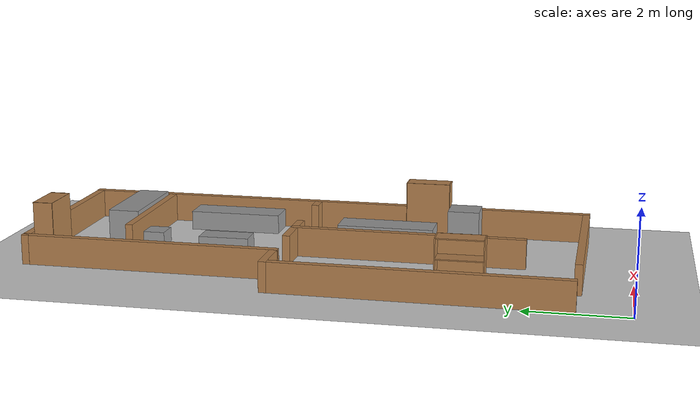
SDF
<sdf version="1.7">
 <world name="default">
  <light name="sun" type="directional">
   <pose>0 0 10 0 -0 0</pose>
   <diffuse>0.8 0.8 0.8 1</diffuse>
   <specular>0.2 0.2 0.2 1</specular>
   <attenuation>
    <range>1000</range>
    <constant>0.9</constant>
    <linear>0.01</linear>
    <quadratic>0.001</quadratic>
   </attenuation>
   <direction>-0.5 0.1 -0.9</direction>
   <spot><inner_angle>0</inner_angle><outer_angle>0</outer_angle><falloff>0</falloff></spot>
  </light>
  <model name="ground_plane">
   <static>1</static>
   <link name="link">
    <collision name="collision">
     <geometry><plane><normal>0 0 1</normal><size>100 100</size></plane></geometry>
     <surface>
      <contact><collide_bitmask>65535</collide_bitmask></contact>
      <friction><ode><mu>100</mu><mu2>50</mu2></ode></friction>
     </surface>
    </collision>
    <visual name="visual">
     <cast_shadows>0</cast_shadows>
     <geometry><plane><normal>0 0 1</normal><size>100 100</size></plane></geometry>
     <material>
      <script><uri>file://media/materials/scripts/gazebo.material</uri><name>Gazebo/Grey</name></script>
     </material>
    </visual>
   </link>
  </model>
  <gravity>0 0 -9.8</gravity>
  <magnetic_field>6e-06 2.3e-05 -4.2e-05</magnetic_field>
  <atmosphere type="adiabatic"/>
  <physics type="ode">
   <max_step_size>0.001</max_step_size>
   <real_time_factor>1</real_time_factor>
   <real_time_update_rate>1000</real_time_update_rate>
  </physics>
  <scene><ambient>0.4 0.4 0.4 1</ambient><background>0.7 0.7 0.7 1</background><shadows>1</shadows></scene>
  <spherical_coordinates>
   <surface_model>EARTH_WGS84</surface_model>
   <latitude_deg>0</latitude_deg>
   <longitude_deg>0</longitude_deg>
   <elevation>0</elevation>
   <heading_deg>0</heading_deg>
  </spherical_coordinates>
  <model name="bookshelf">
   <static>1</static>
   <link name="link">
    <inertial><mass>1</mass></inertial>
    <collision name="back">
     <pose>0 0.005 0.6 0 -0 0</pose>
     <geometry><box><size>0.9 0.01 1.2</size></box></geometry>
    </collision>
    <visual name="visual1">
     <pose>0 0.005 0.6 0 -0 0</pose>
     <geometry><box><size>0.9 0.01 1.2</size></box></geometry>
     <material>
      <script><uri>file://media/materials/scripts/gazebo.material</uri><name>Gazebo/Wood</name></script>
     </material>
    </visual>
    <collision name="left_side">
     <pose>0.45 -0.195 0.6 0 -0 0</pose>
     <geometry><box><size>0.02 0.4 1.2</size></box></geometry>
    </collision>
    <visual name="visual2">
     <pose>0.45 -0.195 0.6 0 -0 0</pose>
     <geometry><box><size>0.02 0.4 1.2</size></box></geometry>
     <material>
      <script><uri>file://media/materials/scripts/gazebo.material</uri><name>Gazebo/Wood</name></script>
     </material>
    </visual>
    <collision name="right_side">
     <pose>-0.45 -0.195 0.6 0 -0 0</pose>
     <geometry><box><size>0.02 0.4 1.2</size></box></geometry>
    </collision>
    <visual name="visual3">
     <pose>-0.45 -0.195 0.6 0 -0 0</pose>
     <geometry><box><size>0.02 0.4 1.2</size></box></geometry>
     <material>
      <script><uri>file://media/materials/scripts/gazebo.material</uri><name>Gazebo/Wood</name></script>
     </material>
    </visual>
    <collision name="bottom">
     <pose>0 -0.195 0.03 0 -0 0</pose>
     <geometry><box><size>0.88 0.4 0.06</size></box></geometry>
    </collision>
    <visual name="visual4">
     <pose>0 -0.195 0.03 0 -0 0</pose>
     <geometry><box><size>0.88 0.4 0.06</size></box></geometry>
     <material>
      <script><uri>file://media/materials/scripts/gazebo.material</uri><name>Gazebo/Wood</name></script>
     </material>
    </visual>
    <collision name="top">
     <pose>0 -0.195 1.19 0 -0 0</pose>
     <geometry><box><size>0.88 0.4 0.02</size></box></geometry>
    </collision>
    <visual name="visual5">
     <pose>0 -0.195 1.19 0 -0 0</pose>
     <geometry><box><size>0.88 0.4 0.02</size></box></geometry>
     <material>
      <script><uri>file://media/materials/scripts/gazebo.material</uri><name>Gazebo/Wood</name></script>
     </material>
    </visual>
    <collision name="low_shelf">
     <pose>0 -0.195 0.43 0 -0 0</pose>
     <geometry><box><size>0.88 0.4 0.02</size></box></geometry>
    </collision>
    <visual name="visual6">
     <pose>0 -0.195 0.43 0 -0 0</pose>
     <geometry><box><size>0.88 0.4 0.02</size></box></geometry>
     <material>
      <script><uri>file://media/materials/scripts/gazebo.material</uri><name>Gazebo/Wood</name></script>
     </material>
    </visual>
    <collision name="high_shelf">
     <pose>0 -0.195 0.8 0 -0 0</pose>
     <geometry><box><size>0.88 0.4 0.02</size></box></geometry>
    </collision>
    <visual name="visual7">
     <pose>0 -0.195 0.8 0 -0 0</pose>
     <geometry><box><size>0.88 0.4 0.02</size></box></geometry>
     <material>
      <script><uri>file://media/materials/scripts/gazebo.material</uri><name>Gazebo/Wood</name></script>
     </material>
    </visual>
   </link>
   <pose>4.64022 4.30226 0 0 -0 1.56717</pose>
  </model>
  <model name="bookshelf_0">
   <static>1</static>
   <link name="link">
    <inertial><mass>1</mass></inertial>
    <collision name="back">
     <pose>0 0.005 0.6 0 -0 0</pose>
     <geometry><box><size>0.9 0.01 1.2</size></box></geometry>
    </collision>
    <visual name="visual1">
     <pose>0 0.005 0.6 0 -0 0</pose>
     <geometry><box><size>0.9 0.01 1.2</size></box></geometry>
     <material>
      <script><uri>file://media/materials/scripts/gazebo.material</uri><name>Gazebo/Wood</name></script>
     </material>
    </visual>
    <collision name="left_side">
     <pose>0.45 -0.195 0.6 0 -0 0</pose>
     <geometry><box><size>0.02 0.4 1.2</size></box></geometry>
    </collision>
    <visual name="visual2">
     <pose>0.45 -0.195 0.6 0 -0 0</pose>
     <geometry><box><size>0.02 0.4 1.2</size></box></geometry>
     <material>
      <script><uri>file://media/materials/scripts/gazebo.material</uri><name>Gazebo/Wood</name></script>
     </material>
    </visual>
    <collision name="right_side">
     <pose>-0.45 -0.195 0.6 0 -0 0</pose>
     <geometry><box><size>0.02 0.4 1.2</size></box></geometry>
    </collision>
    <visual name="visual3">
     <pose>-0.45 -0.195 0.6 0 -0 0</pose>
     <geometry><box><size>0.02 0.4 1.2</size></box></geometry>
     <material>
      <script><uri>file://media/materials/scripts/gazebo.material</uri><name>Gazebo/Wood</name></script>
     </material>
    </visual>
    <collision name="bottom">
     <pose>0 -0.195 0.03 0 -0 0</pose>
     <geometry><box><size>0.88 0.4 0.06</size></box></geometry>
    </collision>
    <visual name="visual4">
     <pose>0 -0.195 0.03 0 -0 0</pose>
     <geometry><box><size>0.88 0.4 0.06</size></box></geometry>
     <material>
      <script><uri>file://media/materials/scripts/gazebo.material</uri><name>Gazebo/Wood</name></script>
     </material>
    </visual>
    <collision name="top">
     <pose>0 -0.195 1.19 0 -0 0</pose>
     <geometry><box><size>0.88 0.4 0.02</size></box></geometry>
    </collision>
    <visual name="visual5">
     <pose>0 -0.195 1.19 0 -0 0</pose>
     <geometry><box><size>0.88 0.4 0.02</size></box></geometry>
     <material>
      <script><uri>file://media/materials/scripts/gazebo.material</uri><name>Gazebo/Wood</name></script>
     </material>
    </visual>
    <collision name="low_shelf">
     <pose>0 -0.195 0.43 0 -0 0</pose>
     <geometry><box><size>0.88 0.4 0.02</size></box></geometry>
    </collision>
    <visual name="visual6">
     <pose>0 -0.195 0.43 0 -0 0</pose>
     <geometry><box><size>0.88 0.4 0.02</size></box></geometry>
     <material>
      <script><uri>file://media/materials/scripts/gazebo.material</uri><name>Gazebo/Wood</name></script>
     </material>
    </visual>
    <collision name="high_shelf">
     <pose>0 -0.195 0.8 0 -0 0</pose>
     <geometry><box><size>0.88 0.4 0.02</size></box></geometry>
    </collision>
    <visual name="visual7">
     <pose>0 -0.195 0.8 0 -0 0</pose>
     <geometry><box><size>0.88 0.4 0.02</size></box></geometry>
     <material>
      <script><uri>file://media/materials/scripts/gazebo.material</uri><name>Gazebo/Wood</name></script>
     </material>
    </visual>
   </link>
   <pose>1.76298 11.3937 0 -1.3e-05 0.001754 3.14</pose>
  </model>
  <model name="unit_box_1">
   <link name="link">
    <inertial>
     <mass>1</mass>
     <inertia>
      <ixx>0.166667</ixx>
      <ixy>0</ixy>
      <ixz>0</ixz>
      <iyy>0.166667</iyy>
      <iyz>0</iyz>
      <izz>0.166667</izz>
     </inertia>
    </inertial>
    <visual name="visual">
     <geometry><box><size>1.94128 0.654649 0.397354</size></box></geometry>
     <material>
      <script><name>Gazebo/Grey</name><uri>file://media/materials/scripts/gazebo.material</uri></script>
      <shader type="pixel"><normal_map>__default__</normal_map></shader>
      <ambient>0.729 0.741 0.714 1</ambient>
      <diffuse>0.7 0.7 0.7 1</diffuse>
      <specular>0.01 0.01 0.01 1</specular>
      <emissive>0 0 0 1</emissive>
     </material>
    </visual>
    <collision name="collision">
     <geometry><box><size>1.94128 0.654649 0.397354</size></box></geometry>
     <surface>
      <friction>
       <ode><mu>1</mu><mu2>1</mu2><fdir1>0 0 0</fdir1><slip1>0</slip1><slip2>0</slip2></ode>
       <torsional>
        <coefficient>1</coefficient>
        <patch_radius>0</patch_radius>
        <surface_radius>0</surface_radius>
        <use_patch_radius>1</use_patch_radius>
        <ode><slip>0</slip></ode>
       </torsional>
      </friction>
      <bounce><restitution_coefficient>0</restitution_coefficient><threshold>1e+06</threshold></bounce>
      <contact>
       <collide_without_contact>0</collide_without_contact>
       <collide_without_contact_bitmask>1</collide_without_contact_bitmask>
       <collide_bitmask>1</collide_bitmask>
       <ode>
        <soft_cfm>0</soft_cfm>
        <soft_erp>0.2</soft_erp>
        <kp>1e+13</kp>
        <kd>1</kd>
        <max_vel>0.01</max_vel>
        <min_depth>0</min_depth>
       </ode>
       <bullet>
        <split_impulse>1</split_impulse>
        <split_impulse_penetration_threshold>-0.01</split_impulse_penetration_threshold>
        <soft_cfm>0</soft_cfm>
        <soft_erp>0.2</soft_erp>
        <kp>1e+13</kp>
        <kd>1</kd>
       </bullet>
      </contact>
     </surface>
    </collision>
   </link>
   <static>0</static>
   <pose>4.71312 8.4879 0.198677 -0 -0 -1.57132</pose>
  </model>
  <model name="unit_box_1_clone">
   <link name="link">
    <inertial>
     <mass>1</mass>
     <inertia>
      <ixx>0.166667</ixx>
      <ixy>0</ixy>
      <ixz>0</ixz>
      <iyy>0.166667</iyy>
      <iyz>0</iyz>
      <izz>0.166667</izz>
     </inertia>
    </inertial>
    <visual name="visual">
     <geometry><box><size>1.94129 0.654649 0.397354</size></box></geometry>
     <material>
      <script><name>Gazebo/Grey</name><uri>file://media/materials/scripts/gazebo.material</uri></script>
      <shader type="pixel"><normal_map>__default__</normal_map></shader>
      <ambient>0.729 0.741 0.714 1</ambient>
      <diffuse>0.7 0.7 0.7 1</diffuse>
      <specular>0.01 0.01 0.01 1</specular>
      <emissive>0 0 0 1</emissive>
     </material>
    </visual>
    <collision name="collision">
     <geometry><box><size>1.94129 0.654649 0.397354</size></box></geometry>
     <surface>
      <friction>
       <ode><mu>1</mu><mu2>1</mu2><fdir1>0 0 0</fdir1><slip1>0</slip1><slip2>0</slip2></ode>
       <torsional>
        <coefficient>1</coefficient>
        <patch_radius>0</patch_radius>
        <surface_radius>0</surface_radius>
        <use_patch_radius>1</use_patch_radius>
        <ode><slip>0</slip></ode>
       </torsional>
      </friction>
      <bounce><restitution_coefficient>0</restitution_coefficient><threshold>1e+06</threshold></bounce>
      <contact>
       <collide_without_contact>0</collide_without_contact>
       <collide_without_contact_bitmask>1</collide_without_contact_bitmask>
       <collide_bitmask>1</collide_bitmask>
       <ode>
        <soft_cfm>0</soft_cfm>
        <soft_erp>0.2</soft_erp>
        <kp>1e+13</kp>
        <kd>1</kd>
        <max_vel>0.01</max_vel>
        <min_depth>0</min_depth>
       </ode>
       <bullet>
        <split_impulse>1</split_impulse>
        <split_impulse_penetration_threshold>-0.01</split_impulse_penetration_threshold>
        <soft_cfm>0</soft_cfm>
        <soft_erp>0.2</soft_erp>
        <kp>1e+13</kp>
        <kd>1</kd>
       </bullet>
      </contact>
     </surface>
    </collision>
   </link>
   <static>0</static>
   <pose>0.614576 5.7222 0.198675 7e-06 -0 -1.5701</pose>
  </model>
  <model name="unit_box_1_clone_0">
   <link name="link">
    <inertial>
     <mass>1</mass>
     <inertia>
      <ixx>0.166667</ixx>
      <ixy>0</ixy>
      <ixz>0</ixz>
      <iyy>0.166667</iyy>
      <iyz>0</iyz>
      <izz>0.166667</izz>
     </inertia>
    </inertial>
    <visual name="visual">
     <geometry><box><size>1.94129 0.654649 0.65354</size></box></geometry>
     <material>
      <script><name>Gazebo/Grey</name><uri>file://media/materials/scripts/gazebo.material</uri></script>
      <shader type="pixel"><normal_map>__default__</normal_map></shader>
      <ambient>0.729 0.741 0.714 1</ambient>
      <diffuse>0.7 0.7 0.7 1</diffuse>
      <specular>0.01 0.01 0.01 1</specular>
      <emissive>0 0 0 1</emissive>
     </material>
    </visual>
    <collision name="collision">
     <geometry><box><size>1.94129 0.654649 0.65354</size></box></geometry>
     <surface>
      <friction>
       <ode><mu>1</mu><mu2>1</mu2><fdir1>0 0 0</fdir1><slip1>0</slip1><slip2>0</slip2></ode>
       <torsional>
        <coefficient>1</coefficient>
        <patch_radius>0</patch_radius>
        <surface_radius>0</surface_radius>
        <use_patch_radius>1</use_patch_radius>
        <ode><slip>0</slip></ode>
       </torsional>
      </friction>
      <bounce><restitution_coefficient>0</restitution_coefficient><threshold>1e+06</threshold></bounce>
      <contact>
       <collide_without_contact>0</collide_without_contact>
       <collide_without_contact_bitmask>1</collide_without_contact_bitmask>
       <collide_bitmask>1</collide_bitmask>
       <ode>
        <soft_cfm>0</soft_cfm>
        <soft_erp>0.2</soft_erp>
        <kp>1e+13</kp>
        <kd>1</kd>
        <max_vel>0.01</max_vel>
        <min_depth>0</min_depth>
       </ode>
       <bullet>
        <split_impulse>1</split_impulse>
        <split_impulse_penetration_threshold>-0.01</split_impulse_penetration_threshold>
        <soft_cfm>0</soft_cfm>
        <soft_erp>0.2</soft_erp>
        <kp>1e+13</kp>
        <kd>1</kd>
       </bullet>
      </contact>
     </surface>
    </collision>
   </link>
   <static>0</static>
   <pose>3.18876 4.92918 0.32677 1e-06 -0 1.56418</pose>
  </model>
  <model name="unit_box_1_clone_1">
   <link name="link">
    <inertial>
     <mass>1</mass>
     <inertia>
      <ixx>0.166667</ixx>
      <ixy>0</ixy>
      <ixz>0</ixz>
      <iyy>0.166667</iyy>
      <iyz>0</iyz>
      <izz>0.166667</izz>
     </inertia>
    </inertial>
    <visual name="visual">
     <geometry><box><size>0.642342 0.654649 0.68811</size></box></geometry>
     <material>
      <script><name>Gazebo/Grey</name><uri>file://media/materials/scripts/gazebo.material</uri></script>
      <shader type="pixel"><normal_map>__default__</normal_map></shader>
      <ambient>0.729 0.741 0.714 1</ambient>
      <diffuse>0.7 0.7 0.7 1</diffuse>
      <specular>0.01 0.01 0.01 1</specular>
      <emissive>0 0 0 1</emissive>
     </material>
    </visual>
    <collision name="collision">
     <geometry><box><size>0.642342 0.654649 0.68811</size></box></geometry>
     <surface>
      <friction>
       <ode><mu>1</mu><mu2>1</mu2><fdir1>0 0 0</fdir1><slip1>0</slip1><slip2>0</slip2></ode>
       <torsional>
        <coefficient>1</coefficient>
        <patch_radius>0</patch_radius>
        <surface_radius>0</surface_radius>
        <use_patch_radius>1</use_patch_radius>
        <ode><slip>0</slip></ode>
       </torsional>
      </friction>
      <bounce><restitution_coefficient>0</restitution_coefficient><threshold>1e+06</threshold></bounce>
      <contact>
       <collide_without_contact>0</collide_without_contact>
       <collide_without_contact_bitmask>1</collide_without_contact_bitmask>
       <collide_bitmask>1</collide_bitmask>
       <ode>
        <soft_cfm>0</soft_cfm>
        <soft_erp>0.2</soft_erp>
        <kp>1e+13</kp>
        <kd>1</kd>
        <max_vel>0.01</max_vel>
        <min_depth>0</min_depth>
       </ode>
       <bullet>
        <split_impulse>1</split_impulse>
        <split_impulse_penetration_threshold>-0.01</split_impulse_penetration_threshold>
        <soft_cfm>0</soft_cfm>
        <soft_erp>0.2</soft_erp>
        <kp>1e+13</kp>
        <kd>1</kd>
       </bullet>
      </contact>
     </surface>
    </collision>
   </link>
   <static>0</static>
   <pose>4.69274 3.51474 0.344055 0 -0 -0.003646</pose>
  </model>
  <model name="bookshelf_clone">
   <static>1</static>
   <link name="link">
    <inertial><mass>1</mass></inertial>
    <collision name="back">
     <pose>0 0.005 0.6 0 -0 0</pose>
     <geometry><box><size>0.9 0.01 1.2</size></box></geometry>
    </collision>
    <visual name="visual1">
     <pose>0 0.005 0.6 0 -0 0</pose>
     <geometry><box><size>0.9 0.01 1.2</size></box></geometry>
     <material>
      <script><uri>file://media/materials/scripts/gazebo.material</uri><name>Gazebo/Wood</name></script>
     </material>
    </visual>
    <collision name="left_side">
     <pose>0.45 -0.195 0.6 0 -0 0</pose>
     <geometry><box><size>0.02 0.4 1.2</size></box></geometry>
    </collision>
    <visual name="visual2">
     <pose>0.45 -0.195 0.6 0 -0 0</pose>
     <geometry><box><size>0.02 0.4 1.2</size></box></geometry>
     <material>
      <script><uri>file://media/materials/scripts/gazebo.material</uri><name>Gazebo/Wood</name></script>
     </material>
    </visual>
    <collision name="right_side">
     <pose>-0.45 -0.195 0.6 0 -0 0</pose>
     <geometry><box><size>0.02 0.4 1.2</size></box></geometry>
    </collision>
    <visual name="visual3">
     <pose>-0.45 -0.195 0.6 0 -0 0</pose>
     <geometry><box><size>0.02 0.4 1.2</size></box></geometry>
     <material>
      <script><uri>file://media/materials/scripts/gazebo.material</uri><name>Gazebo/Wood</name></script>
     </material>
    </visual>
    <collision name="bottom">
     <pose>0 -0.195 0.03 0 -0 0</pose>
     <geometry><box><size>0.88 0.4 0.06</size></box></geometry>
    </collision>
    <visual name="visual4">
     <pose>0 -0.195 0.03 0 -0 0</pose>
     <geometry><box><size>0.88 0.4 0.06</size></box></geometry>
     <material>
      <script><uri>file://media/materials/scripts/gazebo.material</uri><name>Gazebo/Wood</name></script>
     </material>
    </visual>
    <collision name="top">
     <pose>0 -0.195 1.19 0 -0 0</pose>
     <geometry><box><size>0.88 0.4 0.02</size></box></geometry>
    </collision>
    <visual name="visual5">
     <pose>0 -0.195 1.19 0 -0 0</pose>
     <geometry><box><size>0.88 0.4 0.02</size></box></geometry>
     <material>
      <script><uri>file://media/materials/scripts/gazebo.material</uri><name>Gazebo/Wood</name></script>
     </material>
    </visual>
    <collision name="low_shelf">
     <pose>0 -0.195 0.43 0 -0 0</pose>
     <geometry><box><size>0.88 0.4 0.02</size></box></geometry>
    </collision>
    <visual name="visual6">
     <pose>0 -0.195 0.43 0 -0 0</pose>
     <geometry><box><size>0.88 0.4 0.02</size></box></geometry>
     <material>
      <script><uri>file://media/materials/scripts/gazebo.material</uri><name>Gazebo/Wood</name></script>
     </material>
    </visual>
    <collision name="high_shelf">
     <pose>0 -0.195 0.8 0 -0 0</pose>
     <geometry><box><size>0.88 0.4 0.02</size></box></geometry>
    </collision>
    <visual name="visual7">
     <pose>0 -0.195 0.8 0 -0 0</pose>
     <geometry><box><size>0.88 0.4 0.02</size></box></geometry>
     <material>
      <script><uri>file://media/materials/scripts/gazebo.material</uri><name>Gazebo/Wood</name></script>
     </material>
    </visual>
   </link>
   <pose>0.634034 3.1354 0 0 0 -1.56184</pose>
  </model>
  <model name="unit_box_1_clone_2">
   <link name="link">
    <inertial>
     <mass>1</mass>
     <inertia>
      <ixx>0.166667</ixx>
      <ixy>0</ixy>
      <ixz>0</ixz>
      <iyy>0.166667</iyy>
      <iyz>0</iyz>
      <izz>0.166667</izz>
     </inertia>
    </inertial>
    <visual name="visual">
     <geometry><box><size>1.04025 0.52304 0.295985</size></box></geometry>
     <material>
      <script><name>Gazebo/Grey</name><uri>file://media/materials/scripts/gazebo.material</uri></script>
      <shader type="pixel"><normal_map>__default__</normal_map></shader>
      <ambient>0.729 0.741 0.714 1</ambient>
      <diffuse>0.7 0.7 0.7 1</diffuse>
      <specular>0.01 0.01 0.01 1</specular>
      <emissive>0 0 0 1</emissive>
     </material>
    </visual>
    <collision name="collision">
     <geometry><box><size>1.04025 0.52304 0.295985</size></box></geometry>
     <surface>
      <friction>
       <ode><mu>1</mu><mu2>1</mu2><fdir1>0 0 0</fdir1><slip1>0</slip1><slip2>0</slip2></ode>
       <torsional>
        <coefficient>1</coefficient>
        <patch_radius>0</patch_radius>
        <surface_radius>0</surface_radius>
        <use_patch_radius>1</use_patch_radius>
        <ode><slip>0</slip></ode>
       </torsional>
      </friction>
      <bounce><restitution_coefficient>0</restitution_coefficient><threshold>1e+06</threshold></bounce>
      <contact>
       <collide_without_contact>0</collide_without_contact>
       <collide_without_contact_bitmask>1</collide_without_contact_bitmask>
       <collide_bitmask>1</collide_bitmask>
       <ode>
        <soft_cfm>0</soft_cfm>
        <soft_erp>0.2</soft_erp>
        <kp>1e+13</kp>
        <kd>1</kd>
        <max_vel>0.01</max_vel>
        <min_depth>0</min_depth>
       </ode>
       <bullet>
        <split_impulse>1</split_impulse>
        <split_impulse_penetration_threshold>-0.01</split_impulse_penetration_threshold>
        <soft_cfm>0</soft_cfm>
        <soft_erp>0.2</soft_erp>
        <kp>1e+13</kp>
        <kd>1</kd>
       </bullet>
      </contact>
     </surface>
    </collision>
   </link>
   <static>0</static>
   <pose>2.99365 8.2822 0.147993 -0 -0 -1.55916</pose>
  </model>
  <model name="unit_box_1_clone_2_clone">
   <link name="link">
    <inertial>
     <mass>1</mass>
     <inertia>
      <ixx>0.166667</ixx>
      <ixy>0</ixy>
      <ixz>0</ixz>
      <iyy>0.166667</iyy>
      <iyz>0</iyz>
      <izz>0.166667</izz>
     </inertia>
    </inertial>
    <visual name="visual">
     <geometry><box><size>0.479092 0.463481 0.295985</size></box></geometry>
     <material>
      <script><name>Gazebo/Grey</name><uri>file://media/materials/scripts/gazebo.material</uri></script>
      <shader type="pixel"><normal_map>__default__</normal_map></shader>
      <ambient>0.729 0.741 0.714 1</ambient>
      <diffuse>0.7 0.7 0.7 1</diffuse>
      <specular>0.01 0.01 0.01 1</specular>
      <emissive>0 0 0 1</emissive>
     </material>
    </visual>
    <collision name="collision">
     <geometry><box><size>0.479092 0.463481 0.295985</size></box></geometry>
     <surface>
      <friction>
       <ode><mu>1</mu><mu2>1</mu2><fdir1>0 0 0</fdir1><slip1>0</slip1><slip2>0</slip2></ode>
       <torsional>
        <coefficient>1</coefficient>
        <patch_radius>0</patch_radius>
        <surface_radius>0</surface_radius>
        <use_patch_radius>1</use_patch_radius>
        <ode><slip>0</slip></ode>
       </torsional>
      </friction>
      <bounce><restitution_coefficient>0</restitution_coefficient><threshold>1e+06</threshold></bounce>
      <contact>
       <collide_without_contact>0</collide_without_contact>
       <collide_without_contact_bitmask>1</collide_without_contact_bitmask>
       <collide_bitmask>1</collide_bitmask>
       <ode>
        <soft_cfm>0</soft_cfm>
        <soft_erp>0.2</soft_erp>
        <kp>1e+13</kp>
        <kd>1</kd>
        <max_vel>0.01</max_vel>
        <min_depth>0</min_depth>
       </ode>
       <bullet>
        <split_impulse>1</split_impulse>
        <split_impulse_penetration_threshold>-0.01</split_impulse_penetration_threshold>
        <soft_cfm>0</soft_cfm>
        <soft_erp>0.2</soft_erp>
        <kp>1e+13</kp>
        <kd>1</kd>
       </bullet>
      </contact>
     </surface>
    </collision>
   </link>
   <static>0</static>
   <pose>3.1061 9.83613 0.147992 -0 -0 -0.000143</pose>
  </model>
  <model name="unit_box_1_clone_0_clone">
   <link name="link">
    <inertial>
     <mass>1</mass>
     <inertia>
      <ixx>0.166667</ixx>
      <ixy>0</ixy>
      <ixz>0</ixz>
      <iyy>0.166667</iyy>
      <iyz>0</iyz>
      <izz>0.166667</izz>
     </inertia>
    </inertial>
    <visual name="visual">
     <geometry><box><size>1.94129 0.654649 0.65354</size></box></geometry>
     <material>
      <script><name>Gazebo/Grey</name><uri>file://media/materials/scripts/gazebo.material</uri></script>
      <shader type="pixel"><normal_map>__default__</normal_map></shader>
      <ambient>0.729 0.741 0.714 1</ambient>
      <diffuse>0.7 0.7 0.7 1</diffuse>
      <specular>0.01 0.01 0.01 1</specular>
      <emissive>0 0 0 1</emissive>
     </material>
    </visual>
    <collision name="collision">
     <geometry><box><size>1.94129 0.654649 0.65354</size></box></geometry>
     <surface>
      <friction>
       <ode><mu>1</mu><mu2>1</mu2><fdir1>0 0 0</fdir1><slip1>0</slip1><slip2>0</slip2></ode>
       <torsional>
        <coefficient>1</coefficient>
        <patch_radius>0</patch_radius>
        <surface_radius>0</surface_radius>
        <use_patch_radius>1</use_patch_radius>
        <ode><slip>0</slip></ode>
       </torsional>
      </friction>
      <bounce><restitution_coefficient>0</restitution_coefficient><threshold>1e+06</threshold></bounce>
      <contact>
       <collide_without_contact>0</collide_without_contact>
       <collide_without_contact_bitmask>1</collide_without_contact_bitmask>
       <collide_bitmask>1</collide_bitmask>
       <ode>
        <soft_cfm>0</soft_cfm>
        <soft_erp>0.2</soft_erp>
        <kp>1e+13</kp>
        <kd>1</kd>
        <max_vel>0.01</max_vel>
        <min_depth>0</min_depth>
       </ode>
       <bullet>
        <split_impulse>1</split_impulse>
        <split_impulse_penetration_threshold>-0.01</split_impulse_penetration_threshold>
        <soft_cfm>0</soft_cfm>
        <soft_erp>0.2</soft_erp>
        <kp>1e+13</kp>
        <kd>1</kd>
       </bullet>
      </contact>
     </surface>
    </collision>
   </link>
   <static>0</static>
   <pose>4.10809 10.568 0.326767 -1e-05 -0 -0.013198</pose>
  </model>
  <model name="LAR_test">
   <link name="Wall_76">
    <pose>-2.4315 2.473 0 0 -0 3.14159</pose>
    <visual name="Wall_76_Visual">
     <pose>0 0 0.3 0 -0 0</pose>
     <geometry><box><size>5.82713 0.15 0.6</size></box></geometry>
     <material>
      <script><uri>file://media/materials/scripts/gazebo.material</uri><name>Gazebo/Wood</name></script>
      <ambient>1 1 1 1</ambient>
      <shader type="pixel"/>
     </material>
     <meta><layer>0</layer></meta>
    </visual>
    <collision name="Wall_76_Collision">
     <pose>0 0 0.3 0 -0 0</pose>
     <geometry><box><size>5.82713 0.15 0.6</size></box></geometry>
     <surface>
      <friction>
       <ode><mu>1</mu><mu2>1</mu2><fdir1>0 0 0</fdir1><slip1>0</slip1><slip2>0</slip2></ode>
       <torsional>
        <coefficient>1</coefficient>
        <patch_radius>0</patch_radius>
        <surface_radius>0</surface_radius>
        <use_patch_radius>1</use_patch_radius>
        <ode><slip>0</slip></ode>
       </torsional>
      </friction>
      <bounce><restitution_coefficient>0</restitution_coefficient><threshold>1e+06</threshold></bounce>
      <contact>
       <collide_without_contact>0</collide_without_contact>
       <collide_without_contact_bitmask>1</collide_without_contact_bitmask>
       <collide_bitmask>1</collide_bitmask>
       <ode>
        <soft_cfm>0</soft_cfm>
        <soft_erp>0.2</soft_erp>
        <kp>1e+13</kp>
        <kd>1</kd>
        <max_vel>0.01</max_vel>
        <min_depth>0</min_depth>
       </ode>
       <bullet>
        <split_impulse>1</split_impulse>
        <split_impulse_penetration_threshold>-0.01</split_impulse_penetration_threshold>
        <soft_cfm>0</soft_cfm>
        <soft_erp>0.2</soft_erp>
        <kp>1e+13</kp>
        <kd>1</kd>
       </bullet>
      </contact>
     </surface>
    </collision>
   </link>
   <link name="Wall_78">
    <pose>0.407 2.048 0 0 0 -1.5708</pose>
    <visual name="Wall_78_Visual">
     <pose>0 0 0.3 0 -0 0</pose>
     <geometry><box><size>1 0.15 0.6</size></box></geometry>
     <material>
      <script><uri>file://media/materials/scripts/gazebo.material</uri><name>Gazebo/Wood</name></script>
      <ambient>1 1 1 1</ambient>
      <shader type="pixel"/>
     </material>
     <meta><layer>0</layer></meta>
    </visual>
    <collision name="Wall_78_Collision">
     <pose>0 0 0.3 0 -0 0</pose>
     <geometry><box><size>1 0.15 0.6</size></box></geometry>
     <surface>
      <friction>
       <ode><mu>1</mu><mu2>1</mu2><fdir1>0 0 0</fdir1><slip1>0</slip1><slip2>0</slip2></ode>
       <torsional>
        <coefficient>1</coefficient>
        <patch_radius>0</patch_radius>
        <surface_radius>0</surface_radius>
        <use_patch_radius>1</use_patch_radius>
        <ode><slip>0</slip></ode>
       </torsional>
      </friction>
      <bounce><restitution_coefficient>0</restitution_coefficient><threshold>1e+06</threshold></bounce>
      <contact>
       <collide_without_contact>0</collide_without_contact>
       <collide_without_contact_bitmask>1</collide_without_contact_bitmask>
       <collide_bitmask>1</collide_bitmask>
       <ode>
        <soft_cfm>0</soft_cfm>
        <soft_erp>0.2</soft_erp>
        <kp>1e+13</kp>
        <kd>1</kd>
        <max_vel>0.01</max_vel>
        <min_depth>0</min_depth>
       </ode>
       <bullet>
        <split_impulse>1</split_impulse>
        <split_impulse_penetration_threshold>-0.01</split_impulse_penetration_threshold>
        <soft_cfm>0</soft_cfm>
        <soft_erp>0.2</soft_erp>
        <kp>1e+13</kp>
        <kd>1</kd>
       </bullet>
      </contact>
     </surface>
    </collision>
   </link>
   <link name="Wall_80">
    <pose>2.957 1.6285 0 0 -0 0.002157</pose>
    <visual name="Wall_80_Visual">
     <pose>0 0 0.3 0 -0 0</pose>
     <geometry><box><size>5.25 0.15 0.6</size></box></geometry>
     <material>
      <script><uri>file://media/materials/scripts/gazebo.material</uri><name>Gazebo/Wood</name></script>
      <ambient>1 1 1 1</ambient>
      <shader type="pixel"/>
     </material>
     <meta><layer>0</layer></meta>
    </visual>
    <collision name="Wall_80_Collision">
     <pose>0 0 0.3 0 -0 0</pose>
     <geometry><box><size>5.25 0.15 0.6</size></box></geometry>
     <surface>
      <friction>
       <ode><mu>1</mu><mu2>1</mu2><fdir1>0 0 0</fdir1><slip1>0</slip1><slip2>0</slip2></ode>
       <torsional>
        <coefficient>1</coefficient>
        <patch_radius>0</patch_radius>
        <surface_radius>0</surface_radius>
        <use_patch_radius>1</use_patch_radius>
        <ode><slip>0</slip></ode>
       </torsional>
      </friction>
      <bounce><restitution_coefficient>0</restitution_coefficient><threshold>1e+06</threshold></bounce>
      <contact>
       <collide_without_contact>0</collide_without_contact>
       <collide_without_contact_bitmask>1</collide_without_contact_bitmask>
       <collide_bitmask>1</collide_bitmask>
       <ode>
        <soft_cfm>0</soft_cfm>
        <soft_erp>0.2</soft_erp>
        <kp>1e+13</kp>
        <kd>1</kd>
        <max_vel>0.01</max_vel>
        <min_depth>0</min_depth>
       </ode>
       <bullet>
        <split_impulse>1</split_impulse>
        <split_impulse_penetration_threshold>-0.01</split_impulse_penetration_threshold>
        <soft_cfm>0</soft_cfm>
        <soft_erp>0.2</soft_erp>
        <kp>1e+13</kp>
        <kd>1</kd>
       </bullet>
      </contact>
     </surface>
    </collision>
   </link>
   <link name="Wall_82">
    <pose>5.507 -0.4155 0 0 0 -1.5708</pose>
    <visual name="Wall_82_Visual">
     <pose>0 0 0.3 0 -0 0</pose>
     <geometry><box><size>4.24965 0.15 0.6</size></box></geometry>
     <material>
      <script><uri>file://media/materials/scripts/gazebo.material</uri><name>Gazebo/Wood</name></script>
      <ambient>1 1 1 1</ambient>
      <shader type="pixel"/>
     </material>
     <meta><layer>0</layer></meta>
    </visual>
    <collision name="Wall_82_Collision">
     <pose>0 0 0.3 0 -0 0</pose>
     <geometry><box><size>4.24965 0.15 0.6</size></box></geometry>
     <surface>
      <friction>
       <ode><mu>1</mu><mu2>1</mu2><fdir1>0 0 0</fdir1><slip1>0</slip1><slip2>0</slip2></ode>
       <torsional>
        <coefficient>1</coefficient>
        <patch_radius>0</patch_radius>
        <surface_radius>0</surface_radius>
        <use_patch_radius>1</use_patch_radius>
        <ode><slip>0</slip></ode>
       </torsional>
      </friction>
      <bounce><restitution_coefficient>0</restitution_coefficient><threshold>1e+06</threshold></bounce>
      <contact>
       <collide_without_contact>0</collide_without_contact>
       <collide_without_contact_bitmask>1</collide_without_contact_bitmask>
       <collide_bitmask>1</collide_bitmask>
       <ode>
        <soft_cfm>0</soft_cfm>
        <soft_erp>0.2</soft_erp>
        <kp>1e+13</kp>
        <kd>1</kd>
        <max_vel>0.01</max_vel>
        <min_depth>0</min_depth>
       </ode>
       <bullet>
        <split_impulse>1</split_impulse>
        <split_impulse_penetration_threshold>-0.01</split_impulse_penetration_threshold>
        <soft_cfm>0</soft_cfm>
        <soft_erp>0.2</soft_erp>
        <kp>1e+13</kp>
        <kd>1</kd>
       </bullet>
      </contact>
     </surface>
    </collision>
   </link>
   <link name="Wall_84">
    <pose>-5.335 -0.470055 0 0 0 -1.5708</pose>
    <inertial>
     <inertia><ixx>0</ixx><ixy>0</ixy><ixz>0</ixz><iyy>0</iyy><iyz>0</iyz><izz>0</izz></inertia>
     <mass>0</mass>
    </inertial>
    <visual name="Wall_84_Visual">
     <pose>0 0 0.3 0 -0 0</pose>
     <geometry><box><size>3.87294 0.15 0.6</size></box></geometry>
     <material>
      <script><uri>file://media/materials/scripts/gazebo.material</uri><name>Gazebo/Wood</name></script>
      <ambient>1 1 1 1</ambient>
      <shader type="pixel"/>
     </material>
     <meta><layer>0</layer></meta>
    </visual>
    <collision name="Wall_84_Collision">
     <pose>0 0 0.3 0 -0 0</pose>
     <geometry><box><size>3.87294 0.15 0.6</size></box></geometry>
     <surface>
      <friction>
       <ode><mu>1</mu><mu2>1</mu2><fdir1>0 0 0</fdir1><slip1>0</slip1><slip2>0</slip2></ode>
       <torsional>
        <coefficient>1</coefficient>
        <patch_radius>0</patch_radius>
        <surface_radius>0</surface_radius>
        <use_patch_radius>1</use_patch_radius>
        <ode><slip>0</slip></ode>
       </torsional>
      </friction>
      <bounce><restitution_coefficient>0</restitution_coefficient><threshold>1e+06</threshold></bounce>
      <contact>
       <collide_without_contact>0</collide_without_contact>
       <collide_without_contact_bitmask>1</collide_without_contact_bitmask>
       <collide_bitmask>1</collide_bitmask>
       <ode>
        <soft_cfm>0</soft_cfm>
        <soft_erp>0.2</soft_erp>
        <kp>1e+13</kp>
        <kd>1</kd>
        <max_vel>0.01</max_vel>
        <min_depth>0</min_depth>
       </ode>
       <bullet>
        <split_impulse>1</split_impulse>
        <split_impulse_penetration_threshold>-0.01</split_impulse_penetration_threshold>
        <soft_cfm>0</soft_cfm>
        <soft_erp>0.2</soft_erp>
        <kp>1e+13</kp>
        <kd>1</kd>
       </bullet>
      </contact>
     </surface>
    </collision>
   </link>
   <link name="Wall_86">
    <pose>0.094 -2.473 0 0 -0 0</pose>
    <visual name="Wall_86_Visual">
     <pose>0 0 0.3 0 -0 0</pose>
     <geometry><box><size>11 0.15 0.6</size></box></geometry>
     <material>
      <script><uri>file://media/materials/scripts/gazebo.material</uri><name>Gazebo/Wood</name></script>
      <ambient>1 1 1 1</ambient>
      <shader type="pixel"/>
     </material>
     <meta><layer>0</layer></meta>
    </visual>
    <collision name="Wall_86_Collision">
     <pose>0 0 0.3 0 -0 0</pose>
     <geometry><box><size>11 0.15 0.6</size></box></geometry>
     <surface>
      <friction>
       <ode><mu>1</mu><mu2>1</mu2><fdir1>0 0 0</fdir1><slip1>0</slip1><slip2>0</slip2></ode>
       <torsional>
        <coefficient>1</coefficient>
        <patch_radius>0</patch_radius>
        <surface_radius>0</surface_radius>
        <use_patch_radius>1</use_patch_radius>
        <ode><slip>0</slip></ode>
       </torsional>
      </friction>
      <bounce><restitution_coefficient>0</restitution_coefficient><threshold>1e+06</threshold></bounce>
      <contact>
       <collide_without_contact>0</collide_without_contact>
       <collide_without_contact_bitmask>1</collide_without_contact_bitmask>
       <collide_bitmask>1</collide_bitmask>
       <ode>
        <soft_cfm>0</soft_cfm>
        <soft_erp>0.2</soft_erp>
        <kp>1e+13</kp>
        <kd>1</kd>
        <max_vel>0.01</max_vel>
        <min_depth>0</min_depth>
       </ode>
       <bullet>
        <split_impulse>1</split_impulse>
        <split_impulse_penetration_threshold>-0.01</split_impulse_penetration_threshold>
        <soft_cfm>0</soft_cfm>
        <soft_erp>0.2</soft_erp>
        <kp>1e+13</kp>
        <kd>1</kd>
       </bullet>
      </contact>
     </surface>
    </collision>
   </link>
   <link name="Wall_91">
    <pose>0.426001 -0.017253 0 0 0 -1.5708</pose>
    <inertial>
     <inertia><ixx>0</ixx><ixy>0</ixy><ixz>0</ixz><iyy>0</iyy><iyz>0</iyz><izz>0</izz></inertia>
     <mass>0</mass>
    </inertial>
    <visual name="Wall_91_Visual">
     <pose>0 0 0.3 0 -0 0</pose>
     <geometry><box><size>1.29551 0.15 0.6</size></box></geometry>
     <material>
      <script><uri>file://media/materials/scripts/gazebo.material</uri><name>Gazebo/Wood</name></script>
      <ambient>1 1 1 1</ambient>
      <shader type="pixel"/>
     </material>
     <meta><layer>0</layer></meta>
    </visual>
    <collision name="Wall_91_Collision">
     <pose>0 0 0.3 0 -0 0</pose>
     <geometry><box><size>1.29551 0.15 0.6</size></box></geometry>
     <surface>
      <friction>
       <ode><mu>1</mu><mu2>1</mu2><fdir1>0 0 0</fdir1><slip1>0</slip1><slip2>0</slip2></ode>
       <torsional>
        <coefficient>1</coefficient>
        <patch_radius>0</patch_radius>
        <surface_radius>0</surface_radius>
        <use_patch_radius>1</use_patch_radius>
        <ode><slip>0</slip></ode>
       </torsional>
      </friction>
      <bounce><restitution_coefficient>0</restitution_coefficient><threshold>1e+06</threshold></bounce>
      <contact>
       <collide_without_contact>0</collide_without_contact>
       <collide_without_contact_bitmask>1</collide_without_contact_bitmask>
       <collide_bitmask>1</collide_bitmask>
       <ode>
        <soft_cfm>0</soft_cfm>
        <soft_erp>0.2</soft_erp>
        <kp>1e+13</kp>
        <kd>1</kd>
        <max_vel>0.01</max_vel>
        <min_depth>0</min_depth>
       </ode>
       <bullet>
        <split_impulse>1</split_impulse>
        <split_impulse_penetration_threshold>-0.01</split_impulse_penetration_threshold>
        <soft_cfm>0</soft_cfm>
        <soft_erp>0.2</soft_erp>
        <kp>1e+13</kp>
        <kd>1</kd>
       </bullet>
      </contact>
     </surface>
    </collision>
   </link>
   <link name="Wall_93">
    <pose>0.437 -2.276 0 0 -0 1.5708</pose>
    <visual name="Wall_93_Visual">
     <pose>0 0 0.3 0 -0 0</pose>
     <geometry><box><size>0.5 0.15 0.6</size></box></geometry>
     <material>
      <script><uri>file://media/materials/scripts/gazebo.material</uri><name>Gazebo/Wood</name></script>
      <ambient>1 1 1 1</ambient>
      <shader type="pixel"/>
     </material>
     <meta><layer>0</layer></meta>
    </visual>
    <collision name="Wall_93_Collision">
     <pose>0 0 0.3 0 -0 0</pose>
     <geometry><box><size>0.5 0.15 0.6</size></box></geometry>
     <surface>
      <friction>
       <ode><mu>1</mu><mu2>1</mu2><fdir1>0 0 0</fdir1><slip1>0</slip1><slip2>0</slip2></ode>
       <torsional>
        <coefficient>1</coefficient>
        <patch_radius>0</patch_radius>
        <surface_radius>0</surface_radius>
        <use_patch_radius>1</use_patch_radius>
        <ode><slip>0</slip></ode>
       </torsional>
      </friction>
      <bounce><restitution_coefficient>0</restitution_coefficient><threshold>1e+06</threshold></bounce>
      <contact>
       <collide_without_contact>0</collide_without_contact>
       <collide_without_contact_bitmask>1</collide_without_contact_bitmask>
       <collide_bitmask>1</collide_bitmask>
       <ode>
        <soft_cfm>0</soft_cfm>
        <soft_erp>0.2</soft_erp>
        <kp>1e+13</kp>
        <kd>1</kd>
        <max_vel>0.01</max_vel>
        <min_depth>0</min_depth>
       </ode>
       <bullet>
        <split_impulse>1</split_impulse>
        <split_impulse_penetration_threshold>-0.01</split_impulse_penetration_threshold>
        <soft_cfm>0</soft_cfm>
        <soft_erp>0.2</soft_erp>
        <kp>1e+13</kp>
        <kd>1</kd>
       </bullet>
      </contact>
     </surface>
    </collision>
   </link>
   <link name="Wall_96">
    <pose>-1.886 -0.131 0 0 -0 3.14159</pose>
    <visual name="Wall_96_Visual">
     <pose>0 0 0.3 0 -0 0</pose>
     <geometry><box><size>4.75 0.15 0.6</size></box></geometry>
     <material>
      <script><uri>file://media/materials/scripts/gazebo.material</uri><name>Gazebo/Wood</name></script>
      <ambient>1 1 1 1</ambient>
      <shader type="pixel"/>
     </material>
     <meta><layer>0</layer></meta>
    </visual>
    <collision name="Wall_96_Collision">
     <pose>0 0 0.3 0 -0 0</pose>
     <geometry><box><size>4.75 0.15 0.6</size></box></geometry>
     <surface>
      <friction>
       <ode><mu>1</mu><mu2>1</mu2><fdir1>0 0 0</fdir1><slip1>0</slip1><slip2>0</slip2></ode>
       <torsional>
        <coefficient>1</coefficient>
        <patch_radius>0</patch_radius>
        <surface_radius>0</surface_radius>
        <use_patch_radius>1</use_patch_radius>
        <ode><slip>0</slip></ode>
       </torsional>
      </friction>
      <bounce><restitution_coefficient>0</restitution_coefficient><threshold>1e+06</threshold></bounce>
      <contact>
       <collide_without_contact>0</collide_without_contact>
       <collide_without_contact_bitmask>1</collide_without_contact_bitmask>
       <collide_bitmask>1</collide_bitmask>
       <ode>
        <soft_cfm>0</soft_cfm>
        <soft_erp>0.2</soft_erp>
        <kp>1e+13</kp>
        <kd>1</kd>
        <max_vel>0.01</max_vel>
        <min_depth>0</min_depth>
       </ode>
       <bullet>
        <split_impulse>1</split_impulse>
        <split_impulse_penetration_threshold>-0.01</split_impulse_penetration_threshold>
        <soft_cfm>0</soft_cfm>
        <soft_erp>0.2</soft_erp>
        <kp>1e+13</kp>
        <kd>1</kd>
       </bullet>
      </contact>
     </surface>
    </collision>
   </link>
   <link name="Wall_98">
    <pose>3.78 -1.037 0 0 -0 1.5708</pose>
    <visual name="Wall_98_Visual">
     <pose>0 0 0.3 0 -0 0</pose>
     <geometry><box><size>3 0.15 0.6</size></box></geometry>
     <material>
      <script><uri>file://media/materials/scripts/gazebo.material</uri><name>Gazebo/Wood</name></script>
      <ambient>1 1 1 1</ambient>
      <shader type="pixel"/>
     </material>
     <meta><layer>0</layer></meta>
    </visual>
    <collision name="Wall_98_Collision">
     <pose>0 0 0.3 0 -0 0</pose>
     <geometry><box><size>3 0.15 0.6</size></box></geometry>
     <surface>
      <friction>
       <ode><mu>1</mu><mu2>1</mu2><fdir1>0 0 0</fdir1><slip1>0</slip1><slip2>0</slip2></ode>
       <torsional>
        <coefficient>1</coefficient>
        <patch_radius>0</patch_radius>
        <surface_radius>0</surface_radius>
        <use_patch_radius>1</use_patch_radius>
        <ode><slip>0</slip></ode>
       </torsional>
      </friction>
      <bounce><restitution_coefficient>0</restitution_coefficient><threshold>1e+06</threshold></bounce>
      <contact>
       <collide_without_contact>0</collide_without_contact>
       <collide_without_contact_bitmask>1</collide_without_contact_bitmask>
       <collide_bitmask>1</collide_bitmask>
       <ode>
        <soft_cfm>0</soft_cfm>
        <soft_erp>0.2</soft_erp>
        <kp>1e+13</kp>
        <kd>1</kd>
        <max_vel>0.01</max_vel>
        <min_depth>0</min_depth>
       </ode>
       <bullet>
        <split_impulse>1</split_impulse>
        <split_impulse_penetration_threshold>-0.01</split_impulse_penetration_threshold>
        <soft_cfm>0</soft_cfm>
        <soft_erp>0.2</soft_erp>
        <kp>1e+13</kp>
        <kd>1</kd>
       </bullet>
      </contact>
     </surface>
    </collision>
   </link>
   <static>1</static>
   <pose>2.66024 6.34695 0 0 -0 1.56451</pose>
  </model>
 </world>
</sdf>
